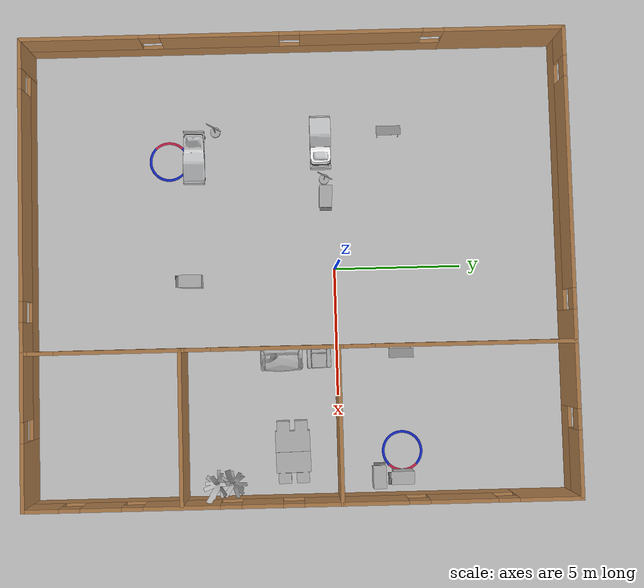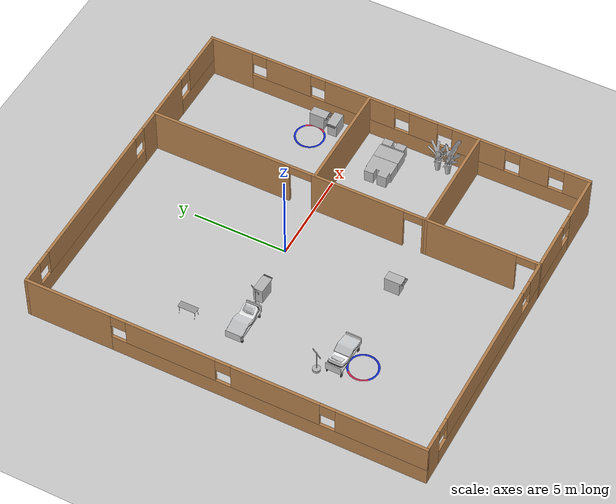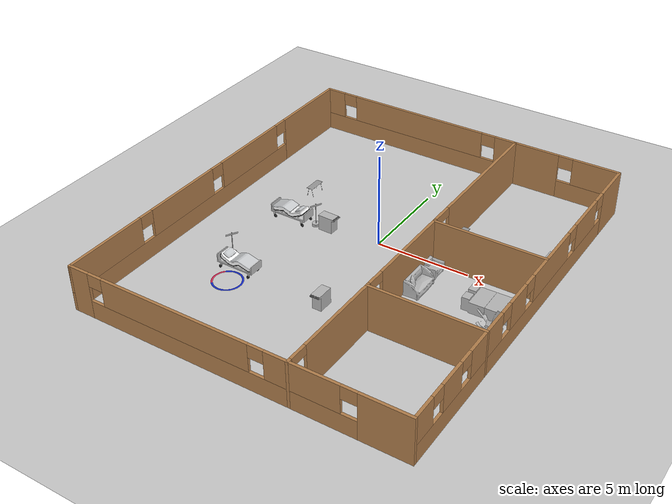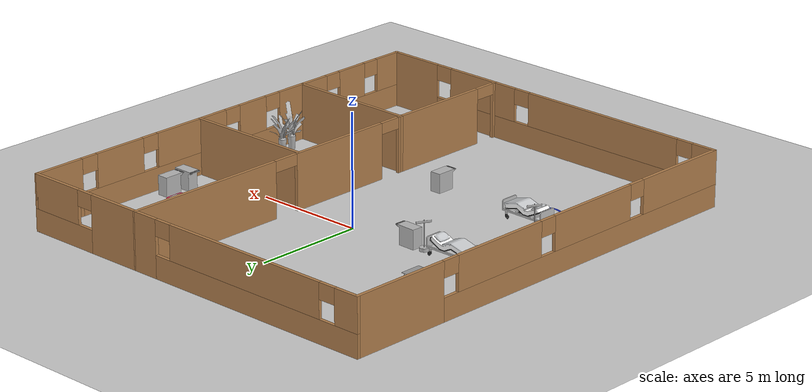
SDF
<sdf version="1.6">
 <world name="default">
  <model name="ground_plane">
   <static>1</static>
   <link name="link">
    <collision name="collision">
     <geometry><plane><normal>0 0 1</normal><size>100 100</size></plane></geometry>
     <surface>
      <contact><collide_bitmask>65535</collide_bitmask></contact>
      <friction><ode><mu>100</mu><mu2>50</mu2></ode></friction>
     </surface>
    </collision>
    <visual name="visual">
     <cast_shadows>0</cast_shadows>
     <geometry><plane><normal>0 0 1</normal><size>100 100</size></plane></geometry>
     <material>
      <script><uri>file://media/materials/scripts/gazebo.material</uri><name>Gazebo/Grey</name></script>
     </material>
    </visual>
   </link>
  </model>
  <model name="hospital_room2_empty_0">
   <pose>5.99215 -1.51021 0 0 -0 0</pose>
   <link name="Wall_0">
    <pose>-2.925 0 0 0 -0 1.5708</pose>
    <visual name="Wall_0_Visual_0">
     <pose>-10.3642 0 1.25 0 -0 0</pose>
     <geometry><box><size>0.271667 0.15 2.5</size></box></geometry>
     <material>
      <script><uri>file://media/materials/scripts/gazebo.material</uri><name>Gazebo/Wood</name></script>
      <ambient>1 1 1 1</ambient>
     </material>
     <meta><layer>0</layer></meta>
    </visual>
    <collision name="Wall_0_Collision_0">
     <geometry><box><size>0.271667 0.15 2.5</size></box></geometry>
     <pose>-10.3642 0 1.25 0 -0 0</pose>
    </collision>
    <visual name="Wall_0_Visual_1">
     <pose>-6.76986 0 1.25 0 -0 0</pose>
     <geometry><box><size>4.91694 0.15 2.5</size></box></geometry>
     <material>
      <script><uri>file://media/materials/scripts/gazebo.material</uri><name>Gazebo/Wood</name></script>
      <ambient>1 1 1 1</ambient>
     </material>
     <meta><layer>0</layer></meta>
    </visual>
    <collision name="Wall_0_Collision_1">
     <geometry><box><size>4.91694 0.15 2.5</size></box></geometry>
     <pose>-6.76986 0 1.25 0 -0 0</pose>
    </collision>
    <visual name="Wall_0_Visual_2">
     <pose>-0.820784 0 1.25 0 -0 0</pose>
     <geometry><box><size>4.98121 0.15 2.5</size></box></geometry>
     <material>
      <script><uri>file://media/materials/scripts/gazebo.material</uri><name>Gazebo/Wood</name></script>
      <ambient>1 1 1 1</ambient>
     </material>
     <meta><layer>0</layer></meta>
    </visual>
    <collision name="Wall_0_Collision_2">
     <geometry><box><size>4.98121 0.15 2.5</size></box></geometry>
     <pose>-0.820784 0 1.25 0 -0 0</pose>
    </collision>
    <visual name="Wall_0_Visual_3">
     <pose>6.68491 0 1.25 0 -0 0</pose>
     <geometry><box><size>7.63018 0.15 2.5</size></box></geometry>
     <material>
      <script><uri>file://media/materials/scripts/gazebo.material</uri><name>Gazebo/Wood</name></script>
      <ambient>1 1 1 1</ambient>
     </material>
     <meta><layer>0</layer></meta>
    </visual>
    <collision name="Wall_0_Collision_3">
     <geometry><box><size>7.63018 0.15 2.5</size></box></geometry>
     <pose>6.68491 0 1.25 0 -0 0</pose>
    </collision>
    <visual name="Wall_0_Visual_4">
     <pose>-9.72833 0 2.25 0 -0 0</pose>
     <geometry><box><size>1 0.15 0.5</size></box></geometry>
     <material>
      <script><uri>file://media/materials/scripts/gazebo.material</uri><name>Gazebo/Wood</name></script>
      <ambient>1 1 1 1</ambient>
     </material>
     <meta><layer>0</layer></meta>
    </visual>
    <collision name="Wall_0_Collision_4">
     <geometry><box><size>1 0.15 0.5</size></box></geometry>
     <pose>-9.72833 0 2.25 0 -0 0</pose>
    </collision>
    <visual name="Wall_0_Visual_5">
     <pose>-3.81139 0 2.25 0 -0 0</pose>
     <geometry><box><size>1 0.15 0.5</size></box></geometry>
     <material>
      <script><uri>file://media/materials/scripts/gazebo.material</uri><name>Gazebo/Wood</name></script>
      <ambient>1 1 1 1</ambient>
     </material>
     <meta><layer>0</layer></meta>
    </visual>
    <collision name="Wall_0_Collision_5">
     <geometry><box><size>1 0.15 0.5</size></box></geometry>
     <pose>-3.81139 0 2.25 0 -0 0</pose>
    </collision>
    <visual name="Wall_0_Visual_6">
     <pose>2.26982 0 2.25 0 -0 0</pose>
     <geometry><box><size>1.2 0.15 0.5</size></box></geometry>
     <material>
      <script><uri>file://media/materials/scripts/gazebo.material</uri><name>Gazebo/Wood</name></script>
      <ambient>1 1 1 1</ambient>
     </material>
     <meta><layer>0</layer></meta>
    </visual>
    <collision name="Wall_0_Collision_6">
     <geometry><box><size>1.2 0.15 0.5</size></box></geometry>
     <pose>2.26982 0 2.25 0 -0 0</pose>
    </collision>
   </link>
   <link name="Wall_10">
    <collision name="Wall_10_Collision">
     <geometry><box><size>6 0.15 2.5</size></box></geometry>
     <pose>0 0 1.25 0 -0 0</pose>
    </collision>
    <visual name="Wall_10_Visual">
     <pose>0 0 1.25 0 -0 0</pose>
     <geometry><box><size>6 0.15 2.5</size></box></geometry>
     <material>
      <script><uri>file://media/materials/scripts/gazebo.material</uri><name>Gazebo/Wood</name></script>
      <ambient>1 1 1 1</ambient>
     </material>
     <meta><layer>0</layer></meta>
    </visual>
    <pose>-0 -4.5 0 0 -0 0</pose>
   </link>
   <link name="Wall_2">
    <pose>-0 10.425 0 0 -0 0</pose>
    <visual name="Wall_2_Visual_0">
     <pose>-1.69561 0 1.25 0 -0 0</pose>
     <geometry><box><size>2.60879 0.15 2.5</size></box></geometry>
     <material>
      <script><uri>file://media/materials/scripts/gazebo.material</uri><name>Gazebo/Wood</name></script>
      <ambient>1 1 1 1</ambient>
     </material>
     <meta><layer>0</layer></meta>
    </visual>
    <collision name="Wall_2_Collision_0">
     <geometry><box><size>2.60879 0.15 2.5</size></box></geometry>
     <pose>-1.69561 0 1.25 0 -0 0</pose>
    </collision>
    <visual name="Wall_2_Visual_1">
     <pose>1.30439 0 0.5 0 -0 0</pose>
     <geometry><box><size>3.39121 0.15 1</size></box></geometry>
     <material>
      <script><uri>file://media/materials/scripts/gazebo.material</uri><name>Gazebo/Wood</name></script>
      <ambient>1 1 1 1</ambient>
     </material>
     <meta><layer>0</layer></meta>
    </visual>
    <collision name="Wall_2_Collision_1">
     <geometry><box><size>3.39121 0.15 1</size></box></geometry>
     <pose>1.30439 0 0.5 0 -0 0</pose>
    </collision>
    <visual name="Wall_2_Visual_2">
     <pose>1.7044 0 1.75 0 -0 0</pose>
     <geometry><box><size>2.59121 0.15 1.5</size></box></geometry>
     <material>
      <script><uri>file://media/materials/scripts/gazebo.material</uri><name>Gazebo/Wood</name></script>
      <ambient>1 1 1 1</ambient>
     </material>
     <meta><layer>0</layer></meta>
    </visual>
    <collision name="Wall_2_Collision_2">
     <geometry><box><size>2.59121 0.15 1.5</size></box></geometry>
     <pose>1.7044 0 1.75 0 -0 0</pose>
    </collision>
    <visual name="Wall_2_Visual_3">
     <pose>0.008791 0 2.15 0 -0 0</pose>
     <geometry><box><size>0.8 0.15 0.7</size></box></geometry>
     <material>
      <script><uri>file://media/materials/scripts/gazebo.material</uri><name>Gazebo/Wood</name></script>
      <ambient>1 1 1 1</ambient>
     </material>
     <meta><layer>0</layer></meta>
    </visual>
    <collision name="Wall_2_Collision_3">
     <geometry><box><size>0.8 0.15 0.7</size></box></geometry>
     <pose>0.008791 0 2.15 0 -0 0</pose>
    </collision>
   </link>
   <link name="Wall_4">
    <pose>2.925 0 0 0 -0 -1.5708</pose>
    <visual name="Wall_4_Visual_0">
     <pose>-9.29746 0 1.25 0 -0 0</pose>
     <geometry><box><size>2.40508 0.15 2.5</size></box></geometry>
     <material>
      <script><uri>file://media/materials/scripts/gazebo.material</uri><name>Gazebo/Wood</name></script>
      <ambient>1 1 1 1</ambient>
     </material>
     <meta><layer>0</layer></meta>
    </visual>
    <collision name="Wall_4_Collision_0">
     <geometry><box><size>2.40508 0.15 2.5</size></box></geometry>
     <pose>-9.29746 0 1.25 0 -0 0</pose>
    </collision>
    <visual name="Wall_4_Visual_1">
     <pose>1.20254 0 0.5 0 -0 0</pose>
     <geometry><box><size>18.5949 0.15 1</size></box></geometry>
     <material>
      <script><uri>file://media/materials/scripts/gazebo.material</uri><name>Gazebo/Wood</name></script>
      <ambient>1 1 1 1</ambient>
     </material>
     <meta><layer>0</layer></meta>
    </visual>
    <collision name="Wall_4_Collision_1">
     <geometry><box><size>18.5949 0.15 1</size></box></geometry>
     <pose>1.20254 0 0.5 0 -0 0</pose>
    </collision>
    <visual name="Wall_4_Visual_2">
     <pose>-6.03126 0 1.75 0 -0 0</pose>
     <geometry><box><size>2.52732 0.15 1.5</size></box></geometry>
     <material>
      <script><uri>file://media/materials/scripts/gazebo.material</uri><name>Gazebo/Wood</name></script>
      <ambient>1 1 1 1</ambient>
     </material>
     <meta><layer>0</layer></meta>
    </visual>
    <collision name="Wall_4_Collision_2">
     <geometry><box><size>2.52732 0.15 1.5</size></box></geometry>
     <pose>-6.03126 0 1.75 0 -0 0</pose>
    </collision>
    <visual name="Wall_4_Visual_3">
     <pose>-2.02155 0 1.75 0 -0 0</pose>
     <geometry><box><size>3.8921 0.15 1.5</size></box></geometry>
     <material>
      <script><uri>file://media/materials/scripts/gazebo.material</uri><name>Gazebo/Wood</name></script>
      <ambient>1 1 1 1</ambient>
     </material>
     <meta><layer>0</layer></meta>
    </visual>
    <collision name="Wall_4_Collision_3">
     <geometry><box><size>3.8921 0.15 1.5</size></box></geometry>
     <pose>-2.02155 0 1.75 0 -0 0</pose>
    </collision>
    <visual name="Wall_4_Visual_4">
     <pose>1.49744 0 1.75 0 -0 0</pose>
     <geometry><box><size>1.54589 0.15 1.5</size></box></geometry>
     <material>
      <script><uri>file://media/materials/scripts/gazebo.material</uri><name>Gazebo/Wood</name></script>
      <ambient>1 1 1 1</ambient>
     </material>
     <meta><layer>0</layer></meta>
    </visual>
    <collision name="Wall_4_Collision_4">
     <geometry><box><size>1.54589 0.15 1.5</size></box></geometry>
     <pose>1.49744 0 1.75 0 -0 0</pose>
    </collision>
    <visual name="Wall_4_Visual_5">
     <pose>4.50824 0 1.75 0 -0 0</pose>
     <geometry><box><size>2.87571 0.15 1.5</size></box></geometry>
     <material>
      <script><uri>file://media/materials/scripts/gazebo.material</uri><name>Gazebo/Wood</name></script>
      <ambient>1 1 1 1</ambient>
     </material>
     <meta><layer>0</layer></meta>
    </visual>
    <collision name="Wall_4_Collision_5">
     <geometry><box><size>2.87571 0.15 1.5</size></box></geometry>
     <pose>4.50824 0 1.75 0 -0 0</pose>
    </collision>
    <visual name="Wall_4_Visual_6">
     <pose>7.51696 0 1.75 0 -0 0</pose>
     <geometry><box><size>1.54173 0.15 1.5</size></box></geometry>
     <material>
      <script><uri>file://media/materials/scripts/gazebo.material</uri><name>Gazebo/Wood</name></script>
      <ambient>1 1 1 1</ambient>
     </material>
     <meta><layer>0</layer></meta>
    </visual>
    <collision name="Wall_4_Collision_6">
     <geometry><box><size>1.54173 0.15 1.5</size></box></geometry>
     <pose>7.51696 0 1.75 0 -0 0</pose>
    </collision>
    <visual name="Wall_4_Visual_7">
     <pose>9.79392 0 1.75 0 -0 0</pose>
     <geometry><box><size>1.41217 0.15 1.5</size></box></geometry>
     <material>
      <script><uri>file://media/materials/scripts/gazebo.material</uri><name>Gazebo/Wood</name></script>
      <ambient>1 1 1 1</ambient>
     </material>
     <meta><layer>0</layer></meta>
    </visual>
    <collision name="Wall_4_Collision_7">
     <geometry><box><size>1.41217 0.15 1.5</size></box></geometry>
     <pose>9.79392 0 1.75 0 -0 0</pose>
    </collision>
    <visual name="Wall_4_Visual_8">
     <pose>-7.69492 0 2.15 0 -0 0</pose>
     <geometry><box><size>0.8 0.15 0.7</size></box></geometry>
     <material>
      <script><uri>file://media/materials/scripts/gazebo.material</uri><name>Gazebo/Wood</name></script>
      <ambient>1 1 1 1</ambient>
     </material>
     <meta><layer>0</layer></meta>
    </visual>
    <collision name="Wall_4_Collision_8">
     <geometry><box><size>0.8 0.15 0.7</size></box></geometry>
     <pose>-7.69492 0 2.15 0 -0 0</pose>
    </collision>
    <visual name="Wall_4_Visual_9">
     <pose>-4.36759 0 2.15 0 -0 0</pose>
     <geometry><box><size>0.8 0.15 0.7</size></box></geometry>
     <material>
      <script><uri>file://media/materials/scripts/gazebo.material</uri><name>Gazebo/Wood</name></script>
      <ambient>1 1 1 1</ambient>
     </material>
     <meta><layer>0</layer></meta>
    </visual>
    <collision name="Wall_4_Collision_9">
     <geometry><box><size>0.8 0.15 0.7</size></box></geometry>
     <pose>-4.36759 0 2.15 0 -0 0</pose>
    </collision>
    <visual name="Wall_4_Visual_10">
     <pose>0.324501 0 2.15 0 -0 0</pose>
     <geometry><box><size>0.8 0.15 0.7</size></box></geometry>
     <material>
      <script><uri>file://media/materials/scripts/gazebo.material</uri><name>Gazebo/Wood</name></script>
      <ambient>1 1 1 1</ambient>
     </material>
     <meta><layer>0</layer></meta>
    </visual>
    <collision name="Wall_4_Collision_10">
     <geometry><box><size>0.8 0.15 0.7</size></box></geometry>
     <pose>0.324501 0 2.15 0 -0 0</pose>
    </collision>
    <visual name="Wall_4_Visual_11">
     <pose>2.67039 0 2.15 0 -0 0</pose>
     <geometry><box><size>0.8 0.15 0.7</size></box></geometry>
     <material>
      <script><uri>file://media/materials/scripts/gazebo.material</uri><name>Gazebo/Wood</name></script>
      <ambient>1 1 1 1</ambient>
     </material>
     <meta><layer>0</layer></meta>
    </visual>
    <collision name="Wall_4_Collision_11">
     <geometry><box><size>0.8 0.15 0.7</size></box></geometry>
     <pose>2.67039 0 2.15 0 -0 0</pose>
    </collision>
    <visual name="Wall_4_Visual_12">
     <pose>6.3461 0 2.15 0 -0 0</pose>
     <geometry><box><size>0.8 0.15 0.7</size></box></geometry>
     <material>
      <script><uri>file://media/materials/scripts/gazebo.material</uri><name>Gazebo/Wood</name></script>
      <ambient>1 1 1 1</ambient>
     </material>
     <meta><layer>0</layer></meta>
    </visual>
    <collision name="Wall_4_Collision_12">
     <geometry><box><size>0.8 0.15 0.7</size></box></geometry>
     <pose>6.3461 0 2.15 0 -0 0</pose>
    </collision>
    <visual name="Wall_4_Visual_13">
     <pose>8.68783 0 2.15 0 -0 0</pose>
     <geometry><box><size>0.8 0.15 0.7</size></box></geometry>
     <material>
      <script><uri>file://media/materials/scripts/gazebo.material</uri><name>Gazebo/Wood</name></script>
      <ambient>1 1 1 1</ambient>
     </material>
     <meta><layer>0</layer></meta>
    </visual>
    <collision name="Wall_4_Collision_13">
     <geometry><box><size>0.8 0.15 0.7</size></box></geometry>
     <pose>8.68783 0 2.15 0 -0 0</pose>
    </collision>
   </link>
   <link name="Wall_6">
    <pose>-0 -10.425 0 0 -0 3.14159</pose>
    <visual name="Wall_6_Visual_0">
     <pose>-1.7044 0 1.25 0 -0 0</pose>
     <geometry><box><size>2.59121 0.15 2.5</size></box></geometry>
     <material>
      <script><uri>file://media/materials/scripts/gazebo.material</uri><name>Gazebo/Wood</name></script>
      <ambient>1 1 1 1</ambient>
     </material>
     <meta><layer>0</layer></meta>
    </visual>
    <collision name="Wall_6_Collision_0">
     <geometry><box><size>2.59121 0.15 2.5</size></box></geometry>
     <pose>-1.7044 0 1.25 0 -0 0</pose>
    </collision>
    <visual name="Wall_6_Visual_1">
     <pose>1.2956 0 0.5 0 -0 0</pose>
     <geometry><box><size>3.40879 0.15 1</size></box></geometry>
     <material>
      <script><uri>file://media/materials/scripts/gazebo.material</uri><name>Gazebo/Wood</name></script>
      <ambient>1 1 1 1</ambient>
     </material>
     <meta><layer>0</layer></meta>
    </visual>
    <collision name="Wall_6_Collision_1">
     <geometry><box><size>3.40879 0.15 1</size></box></geometry>
     <pose>1.2956 0 0.5 0 -0 0</pose>
    </collision>
    <visual name="Wall_6_Visual_2">
     <pose>1.69561 0 1.75 0 -0 0</pose>
     <geometry><box><size>2.60879 0.15 1.5</size></box></geometry>
     <material>
      <script><uri>file://media/materials/scripts/gazebo.material</uri><name>Gazebo/Wood</name></script>
      <ambient>1 1 1 1</ambient>
     </material>
     <meta><layer>0</layer></meta>
    </visual>
    <collision name="Wall_6_Collision_2">
     <geometry><box><size>2.60879 0.15 1.5</size></box></geometry>
     <pose>1.69561 0 1.75 0 -0 0</pose>
    </collision>
    <visual name="Wall_6_Visual_3">
     <pose>-0.008791 0 2.15 0 -0 0</pose>
     <geometry><box><size>0.8 0.15 0.7</size></box></geometry>
     <material>
      <script><uri>file://media/materials/scripts/gazebo.material</uri><name>Gazebo/Wood</name></script>
      <ambient>1 1 1 1</ambient>
     </material>
     <meta><layer>0</layer></meta>
    </visual>
    <collision name="Wall_6_Collision_3">
     <geometry><box><size>0.8 0.15 0.7</size></box></geometry>
     <pose>-0.008791 0 2.15 0 -0 0</pose>
    </collision>
   </link>
   <link name="Wall_8">
    <collision name="Wall_8_Collision">
     <geometry><box><size>6 0.15 2.5</size></box></geometry>
     <pose>0 0 1.25 0 -0 0</pose>
    </collision>
    <visual name="Wall_8_Visual">
     <pose>0 0 1.25 0 -0 0</pose>
     <geometry><box><size>6 0.15 2.5</size></box></geometry>
     <material>
      <script><uri>file://media/materials/scripts/gazebo.material</uri><name>Gazebo/Wood</name></script>
      <ambient>1 1 1 1</ambient>
     </material>
     <meta><layer>0</layer></meta>
    </visual>
    <pose>-0 1.5 0 0 -0 0</pose>
   </link>
   <static>1</static>
  </model>
  <model name="hospital_corridor_2">
   <pose>-2.97557 -1.50857 0 0 -0 0</pose>
   <link name="Wall_12">
    <pose>1e-06 10.425 0 0 -0 3.14159</pose>
    <visual name="Wall_12_Visual_0">
     <pose>-5.44242 0 1.25 0 -0 0</pose>
     <geometry><box><size>1.19015 0.15 2.5</size></box></geometry>
     <material>
      <script><uri>file://media/materials/scripts/gazebo.material</uri><name>Gazebo/Wood</name></script>
      <ambient>1 1 1 1</ambient>
     </material>
     <meta><layer>0</layer></meta>
    </visual>
    <collision name="Wall_12_Collision_0">
     <geometry><box><size>1.19015 0.15 2.5</size></box></geometry>
     <pose>-5.44242 0 1.25 0 -0 0</pose>
    </collision>
    <visual name="Wall_12_Visual_1">
     <pose>0.595076 0 0.5 0 -0 0</pose>
     <geometry><box><size>10.8848 0.15 1</size></box></geometry>
     <material>
      <script><uri>file://media/materials/scripts/gazebo.material</uri><name>Gazebo/Wood</name></script>
      <ambient>1 1 1 1</ambient>
     </material>
     <meta><layer>0</layer></meta>
    </visual>
    <collision name="Wall_12_Collision_1">
     <geometry><box><size>10.8848 0.15 1</size></box></geometry>
     <pose>0.595076 0 0.5 0 -0 0</pose>
    </collision>
    <visual name="Wall_12_Visual_2">
     <pose>0.005295 0 1.75 0 -0 0</pose>
     <geometry><box><size>8.10528 0.15 1.5</size></box></geometry>
     <material>
      <script><uri>file://media/materials/scripts/gazebo.material</uri><name>Gazebo/Wood</name></script>
      <ambient>1 1 1 1</ambient>
     </material>
     <meta><layer>0</layer></meta>
    </visual>
    <collision name="Wall_12_Collision_2">
     <geometry><box><size>8.10528 0.15 1.5</size></box></geometry>
     <pose>0.005295 0 1.75 0 -0 0</pose>
    </collision>
    <visual name="Wall_12_Visual_3">
     <pose>5.44772 0 1.75 0 -0 0</pose>
     <geometry><box><size>1.17956 0.15 1.5</size></box></geometry>
     <material>
      <script><uri>file://media/materials/scripts/gazebo.material</uri><name>Gazebo/Wood</name></script>
      <ambient>1 1 1 1</ambient>
     </material>
     <meta><layer>0</layer></meta>
    </visual>
    <collision name="Wall_12_Collision_3">
     <geometry><box><size>1.17956 0.15 1.5</size></box></geometry>
     <pose>5.44772 0 1.75 0 -0 0</pose>
    </collision>
    <visual name="Wall_12_Visual_4">
     <pose>-4.44735 0 2.15 0 -0 0</pose>
     <geometry><box><size>0.8 0.15 0.7</size></box></geometry>
     <material>
      <script><uri>file://media/materials/scripts/gazebo.material</uri><name>Gazebo/Wood</name></script>
      <ambient>1 1 1 1</ambient>
     </material>
     <meta><layer>0</layer></meta>
    </visual>
    <collision name="Wall_12_Collision_4">
     <geometry><box><size>0.8 0.15 0.7</size></box></geometry>
     <pose>-4.44735 0 2.15 0 -0 0</pose>
    </collision>
    <visual name="Wall_12_Visual_5">
     <pose>4.45794 0 2.15 0 -0 0</pose>
     <geometry><box><size>0.8 0.15 0.7</size></box></geometry>
     <material>
      <script><uri>file://media/materials/scripts/gazebo.material</uri><name>Gazebo/Wood</name></script>
      <ambient>1 1 1 1</ambient>
     </material>
     <meta><layer>0</layer></meta>
    </visual>
    <collision name="Wall_12_Collision_5">
     <geometry><box><size>0.8 0.15 0.7</size></box></geometry>
     <pose>4.45794 0 2.15 0 -0 0</pose>
    </collision>
   </link>
   <link name="Wall_13">
    <pose>-5.9625 0 0 0 -0 -1.5708</pose>
    <visual name="Wall_13_Visual_0">
     <pose>-8.17263 0 1.25 0 -0 0</pose>
     <geometry><box><size>4.65474 0.15 2.5</size></box></geometry>
     <material>
      <script><uri>file://media/materials/scripts/gazebo.material</uri><name>Gazebo/Wood</name></script>
      <ambient>1 1 1 1</ambient>
     </material>
     <meta><layer>0</layer></meta>
    </visual>
    <collision name="Wall_13_Collision_0">
     <geometry><box><size>4.65474 0.15 2.5</size></box></geometry>
     <pose>-8.17263 0 1.25 0 -0 0</pose>
    </collision>
    <visual name="Wall_13_Visual_1">
     <pose>2.32737 0 0.5 0 -0 0</pose>
     <geometry><box><size>16.3453 0.15 1</size></box></geometry>
     <material>
      <script><uri>file://media/materials/scripts/gazebo.material</uri><name>Gazebo/Wood</name></script>
      <ambient>1 1 1 1</ambient>
     </material>
     <meta><layer>0</layer></meta>
    </visual>
    <collision name="Wall_13_Collision_1">
     <geometry><box><size>16.3453 0.15 1</size></box></geometry>
     <pose>2.32737 0 0.5 0 -0 0</pose>
    </collision>
    <visual name="Wall_13_Visual_2">
     <pose>-2.68115 0 1.75 0 -0 0</pose>
     <geometry><box><size>4.72821 0.15 1.5</size></box></geometry>
     <material>
      <script><uri>file://media/materials/scripts/gazebo.material</uri><name>Gazebo/Wood</name></script>
      <ambient>1 1 1 1</ambient>
     </material>
     <meta><layer>0</layer></meta>
    </visual>
    <collision name="Wall_13_Collision_2">
     <geometry><box><size>4.72821 0.15 1.5</size></box></geometry>
     <pose>-2.68115 0 1.75 0 -0 0</pose>
    </collision>
    <visual name="Wall_13_Visual_3">
     <pose>2.76611 0 1.75 0 -0 0</pose>
     <geometry><box><size>4.5663 0.15 1.5</size></box></geometry>
     <material>
      <script><uri>file://media/materials/scripts/gazebo.material</uri><name>Gazebo/Wood</name></script>
      <ambient>1 1 1 1</ambient>
     </material>
     <meta><layer>0</layer></meta>
    </visual>
    <collision name="Wall_13_Collision_3">
     <geometry><box><size>4.5663 0.15 1.5</size></box></geometry>
     <pose>2.76611 0 1.75 0 -0 0</pose>
    </collision>
    <visual name="Wall_13_Visual_4">
     <pose>8.17463 0 1.75 0 -0 0</pose>
     <geometry><box><size>4.65074 0.15 1.5</size></box></geometry>
     <material>
      <script><uri>file://media/materials/scripts/gazebo.material</uri><name>Gazebo/Wood</name></script>
      <ambient>1 1 1 1</ambient>
     </material>
     <meta><layer>0</layer></meta>
    </visual>
    <collision name="Wall_13_Collision_4">
     <geometry><box><size>4.65074 0.15 1.5</size></box></geometry>
     <pose>8.17463 0 1.75 0 -0 0</pose>
    </collision>
    <visual name="Wall_13_Visual_5">
     <pose>-5.44526 0 2.15 0 -0 0</pose>
     <geometry><box><size>0.8 0.15 0.7</size></box></geometry>
     <material>
      <script><uri>file://media/materials/scripts/gazebo.material</uri><name>Gazebo/Wood</name></script>
      <ambient>1 1 1 1</ambient>
     </material>
     <meta><layer>0</layer></meta>
    </visual>
    <collision name="Wall_13_Collision_5">
     <geometry><box><size>0.8 0.15 0.7</size></box></geometry>
     <pose>-5.44526 0 2.15 0 -0 0</pose>
    </collision>
    <visual name="Wall_13_Visual_6">
     <pose>0.082958 0 2.15 0 -0 0</pose>
     <geometry><box><size>0.8 0.15 0.7</size></box></geometry>
     <material>
      <script><uri>file://media/materials/scripts/gazebo.material</uri><name>Gazebo/Wood</name></script>
      <ambient>1 1 1 1</ambient>
     </material>
     <meta><layer>0</layer></meta>
    </visual>
    <collision name="Wall_13_Collision_6">
     <geometry><box><size>0.8 0.15 0.7</size></box></geometry>
     <pose>0.082958 0 2.15 0 -0 0</pose>
    </collision>
    <visual name="Wall_13_Visual_7">
     <pose>5.44926 0 2.15 0 -0 0</pose>
     <geometry><box><size>0.8 0.15 0.7</size></box></geometry>
     <material>
      <script><uri>file://media/materials/scripts/gazebo.material</uri><name>Gazebo/Wood</name></script>
      <ambient>1 1 1 1</ambient>
     </material>
     <meta><layer>0</layer></meta>
    </visual>
    <collision name="Wall_13_Collision_7">
     <geometry><box><size>0.8 0.15 0.7</size></box></geometry>
     <pose>5.44926 0 2.15 0 -0 0</pose>
    </collision>
   </link>
   <link name="Wall_14">
    <pose>1e-06 -10.425 0 0 -0 0</pose>
    <visual name="Wall_14_Visual_0">
     <pose>-5.44772 0 1.25 0 -0 0</pose>
     <geometry><box><size>1.17956 0.15 2.5</size></box></geometry>
     <material>
      <script><uri>file://media/materials/scripts/gazebo.material</uri><name>Gazebo/Wood</name></script>
      <ambient>1 1 1 1</ambient>
     </material>
     <meta><layer>0</layer></meta>
    </visual>
    <collision name="Wall_14_Collision_0">
     <geometry><box><size>1.17956 0.15 2.5</size></box></geometry>
     <pose>-5.44772 0 1.25 0 -0 0</pose>
    </collision>
    <visual name="Wall_14_Visual_1">
     <pose>0.589782 0 0.5 0 -0 0</pose>
     <geometry><box><size>10.8954 0.15 1</size></box></geometry>
     <material>
      <script><uri>file://media/materials/scripts/gazebo.material</uri><name>Gazebo/Wood</name></script>
      <ambient>1 1 1 1</ambient>
     </material>
     <meta><layer>0</layer></meta>
    </visual>
    <collision name="Wall_14_Collision_1">
     <geometry><box><size>10.8954 0.15 1</size></box></geometry>
     <pose>0.589782 0 0.5 0 -0 0</pose>
    </collision>
    <visual name="Wall_14_Visual_2">
     <pose>-0.005295 0 1.75 0 -0 0</pose>
     <geometry><box><size>8.10528 0.15 1.5</size></box></geometry>
     <material>
      <script><uri>file://media/materials/scripts/gazebo.material</uri><name>Gazebo/Wood</name></script>
      <ambient>1 1 1 1</ambient>
     </material>
     <meta><layer>0</layer></meta>
    </visual>
    <collision name="Wall_14_Collision_2">
     <geometry><box><size>8.10528 0.15 1.5</size></box></geometry>
     <pose>-0.005295 0 1.75 0 -0 0</pose>
    </collision>
    <visual name="Wall_14_Visual_3">
     <pose>5.44242 0 1.75 0 -0 0</pose>
     <geometry><box><size>1.19015 0.15 1.5</size></box></geometry>
     <material>
      <script><uri>file://media/materials/scripts/gazebo.material</uri><name>Gazebo/Wood</name></script>
      <ambient>1 1 1 1</ambient>
     </material>
     <meta><layer>0</layer></meta>
    </visual>
    <collision name="Wall_14_Collision_3">
     <geometry><box><size>1.19015 0.15 1.5</size></box></geometry>
     <pose>5.44242 0 1.75 0 -0 0</pose>
    </collision>
    <visual name="Wall_14_Visual_4">
     <pose>-4.45794 0 2.15 0 -0 0</pose>
     <geometry><box><size>0.8 0.15 0.7</size></box></geometry>
     <material>
      <script><uri>file://media/materials/scripts/gazebo.material</uri><name>Gazebo/Wood</name></script>
      <ambient>1 1 1 1</ambient>
     </material>
     <meta><layer>0</layer></meta>
    </visual>
    <collision name="Wall_14_Collision_4">
     <geometry><box><size>0.8 0.15 0.7</size></box></geometry>
     <pose>-4.45794 0 2.15 0 -0 0</pose>
    </collision>
    <visual name="Wall_14_Visual_5">
     <pose>4.44735 0 2.15 0 -0 0</pose>
     <geometry><box><size>0.8 0.15 0.7</size></box></geometry>
     <material>
      <script><uri>file://media/materials/scripts/gazebo.material</uri><name>Gazebo/Wood</name></script>
      <ambient>1 1 1 1</ambient>
     </material>
     <meta><layer>0</layer></meta>
    </visual>
    <collision name="Wall_14_Collision_5">
     <geometry><box><size>0.8 0.15 0.7</size></box></geometry>
     <pose>4.44735 0 2.15 0 -0 0</pose>
    </collision>
   </link>
   <static>1</static>
  </model>
  <model name="ikea_desk">
   <static>1</static>
   <link name="link">
    <inertial>
     <mass>5</mass>
     <inertia><ixx>1</ixx><ixy>0</ixy><ixz>0</ixz><iyy>1</iyy><iyz>0</iyz><izz>1</izz></inertia>
    </inertial>
    <collision name="collision">
     <pose>0 0.03 0.227 0 -0 0</pose>
     <geometry><box><size>0.416 0.98 0.455</size></box></geometry>
    </collision>
    <visual name="visual"><geometry><mesh><uri>model://ikea_desk/ikea_desk.dae</uri></mesh></geometry></visual>
   </link>
   <pose>-5.47681 2.23884 0 0 -0 0</pose>
  </model>
  <model name="service_cart_0">
   <static>0</static>
   <link name="link">
    <inertial>
     <mass>10</mass>
     <inertia><ixx>1</ixx><ixy>0</ixy><ixz>0</ixz><iyy>1</iyy><iyz>0</iyz><izz>1</izz></inertia>
    </inertial>
    <collision name="collision">
     <geometry><mesh><uri>model://service_cart/service_cart_collision.dae</uri></mesh></geometry>
    </collision>
    <visual name="visual">
     <geometry><mesh><uri>model://service_cart/service_cart.dae</uri></mesh></geometry>
    </visual>
   </link>
   <pose>8.24265 2.37635 -0.000842 0 9e-06 0.003418</pose>
  </model>
  <model name="service_cart_1">
   <static>0</static>
   <link name="link">
    <inertial>
     <mass>10</mass>
     <inertia><ixx>1</ixx><ixy>0</ixy><ixz>0</ixz><iyy>1</iyy><iyz>0</iyz><izz>1</izz></inertia>
    </inertial>
    <collision name="collision">
     <geometry><mesh><uri>model://service_cart/service_cart_collision.dae</uri></mesh></geometry>
    </collision>
    <visual name="visual">
     <geometry><mesh><uri>model://service_cart/service_cart.dae</uri></mesh></geometry>
    </visual>
   </link>
   <pose>8.13461 1.48598 -0.000842 0 9e-06 -1.56682</pose>
  </model>
  <model name="ikea_desk_1">
   <static>1</static>
   <link name="link">
    <inertial>
     <mass>5</mass>
     <inertia><ixx>1</ixx><ixy>0</ixy><ixz>0</ixz><iyy>1</iyy><iyz>0</iyz><izz>1</izz></inertia>
    </inertial>
    <collision name="collision">
     <pose>0 0.03 0.227 0 -0 0</pose>
     <geometry><box><size>0.416 0.98 0.455</size></box></geometry>
    </collision>
    <visual name="visual"><geometry><mesh><uri>model://ikea_desk/ikea_desk.dae</uri></mesh></geometry></visual>
   </link>
   <pose>3.39039 2.48058 0 0 -0 0</pose>
  </model>
  <model name="chairs_and_table">
   <static>1</static>
   <link name="link">
    <inertial>
     <mass>30</mass>
     <inertia><ixx>1</ixx><ixy>0</ixy><ixz>0</ixz><iyy>1</iyy><iyz>0</iyz><izz>1</izz></inertia>
    </inertial>
    <collision name="collision">
     <geometry><mesh><uri>model://chairs_and_table/chairs_and_table_collision.dae</uri></mesh></geometry>
    </collision>
    <visual name="visual">
     <geometry><mesh><uri>model://chairs_and_table/chairs_and_table.dae</uri></mesh></geometry>
    </visual>
   </link>
   <pose>7.53304 -1.82199 0 0 -0 1.59075</pose>
  </model>
  <model name="chairs_and_table_0">
   <static>1</static>
   <link name="link">
    <inertial>
     <mass>30</mass>
     <inertia><ixx>1</ixx><ixy>0</ixy><ixz>0</ixz><iyy>1</iyy><iyz>0</iyz><izz>1</izz></inertia>
    </inertial>
    <collision name="collision">
     <geometry><mesh><uri>model://chairs_and_table/chairs_and_table_collision.dae</uri></mesh></geometry>
    </collision>
    <visual name="visual">
     <geometry><mesh><uri>model://chairs_and_table/chairs_and_table.dae</uri></mesh></geometry>
    </visual>
   </link>
   <pose>6.73017 -1.84032 0 0 0 -1.55214</pose>
  </model>
  <model name="plant_0">
   <static>1</static>
   <link name="link">
    <inertial>
     <pose>0 -0.2 0 0 -0 0</pose>
     <mass>10</mass>
     <inertia><ixx>1</ixx><ixy>0</ixy><ixz>0</ixz><iyy>1</iyy><iyz>0</iyz><izz>1</izz></inertia>
    </inertial>
    <collision name="collision">
     <geometry><mesh><uri>model://plant/plant_collision.dae</uri></mesh></geometry>
    </collision>
    <visual name="visual"><geometry><mesh><uri>model://plant/plant.dae</uri></mesh></geometry></visual>
   </link>
   <pose>8.27176 -4.72072 0 0 0 -1.57445</pose>
  </model>
  <model name="single_sofa_0">
   <static>1</static>
   <link name="link">
    <inertial>
     <mass>10</mass>
     <inertia><ixx>1</ixx><ixy>0</ixy><ixz>0</ixz><iyy>1</iyy><iyz>0</iyz><izz>1</izz></inertia>
    </inertial>
    <collision name="collision">
     <pose>0 0.07 0.39 0 -0 0</pose>
     <geometry><box><size>0.93 0.738 0.78</size></box></geometry>
    </collision>
    <visual name="visual">
     <geometry><mesh><uri>model://single_sofa/single_sofa.dae</uri></mesh></geometry>
    </visual>
   </link>
   <pose>3.61111 -0.728278 0 0 -0 1.5886</pose>
  </model>
  <model name="round_sofa_3">
   <static>1</static>
   <link name="link">
    <inertial>
     <mass>5</mass>
     <inertia><ixx>1</ixx><ixy>0</ixy><ixz>0</ixz><iyy>1</iyy><iyz>0</iyz><izz>1</izz></inertia>
    </inertial>
    <collision name="collision">
     <pose>-0.09 -0.05 0.425 0 -0 0</pose>
     <geometry><box><size>1.65 0.85 0.85</size></box></geometry>
    </collision>
    <visual name="visual"><geometry><mesh><uri>model://round_sofa/round_sofa.dae</uri></mesh></geometry></visual>
   </link>
   <pose>3.51697 -2.10615 0 0 -0 1.57788</pose>
  </model>
  <model name="iv_pole_5">
   <static>0</static>
   <link name="link">
    <inertial>
     <mass>5</mass>
     <inertia><ixx>1</ixx><ixy>0</ixy><ixz>0</ixz><iyy>1</iyy><iyz>0</iyz><izz>1</izz></inertia>
    </inertial>
    <collision name="collision">
     <geometry><mesh><uri>model://iv_pole/iv_pole_collision.dae</uri></mesh></geometry>
    </collision>
    <visual name="visual"><geometry><mesh><uri>model://iv_pole/iv_pole.dae</uri></mesh></geometry></visual>
   </link>
   <pose>-5.63381 -4.59638 0.008029 1e-06 -0 -6e-05</pose>
  </model>
  <model name="iv_pole_6">
   <static>0</static>
   <link name="link">
    <inertial>
     <mass>5</mass>
     <inertia><ixx>1</ixx><ixy>0</ixy><ixz>0</ixz><iyy>1</iyy><iyz>0</iyz><izz>1</izz></inertia>
    </inertial>
    <collision name="collision">
     <geometry><mesh><uri>model://iv_pole/iv_pole_collision.dae</uri></mesh></geometry>
    </collision>
    <visual name="visual"><geometry><mesh><uri>model://iv_pole/iv_pole.dae</uri></mesh></geometry></visual>
   </link>
   <pose>-3.62636 -0.267731 0.008029 1e-06 -0 0.026395</pose>
  </model>
  <model name="service_cart_7">
   <static>0</static>
   <link name="link">
    <inertial>
     <mass>10</mass>
     <inertia><ixx>1</ixx><ixy>0</ixy><ixz>0</ixz><iyy>1</iyy><iyz>0</iyz><izz>1</izz></inertia>
    </inertial>
    <collision name="collision">
     <geometry><mesh><uri>model://service_cart/service_cart_collision.dae</uri></mesh></geometry>
    </collision>
    <visual name="visual">
     <geometry><mesh><uri>model://service_cart/service_cart.dae</uri></mesh></geometry>
    </visual>
   </link>
   <pose>-2.82378 -0.281133 -0.000842 -0 9e-06 1.5327</pose>
  </model>
  <model name="service_cart_9">
   <static>0</static>
   <link name="link">
    <inertial>
     <mass>10</mass>
     <inertia><ixx>1</ixx><ixy>0</ixy><ixz>0</ixz><iyy>1</iyy><iyz>0</iyz><izz>1</izz></inertia>
    </inertial>
    <collision name="collision">
     <geometry><mesh><uri>model://service_cart/service_cart_collision.dae</uri></mesh></geometry>
    </collision>
    <visual name="visual">
     <geometry><mesh><uri>model://service_cart/service_cart.dae</uri></mesh></geometry>
    </visual>
   </link>
   <pose>0.402938 -5.7503 -0.000842 0 9e-06 0</pose>
  </model>
  <model name="hospital_bed">
   <static>0</static>
   <link name="link">
    <inertial>
     <mass>20</mass>
     <inertia><ixx>1</ixx><ixy>0</ixy><ixz>0</ixz><iyy>1</iyy><iyz>0</iyz><izz>1</izz></inertia>
    </inertial>
    <collision name="collision">
     <geometry><mesh><uri>model://hospital_bed/hospital_bed_collision.dae</uri></mesh></geometry>
    </collision>
    <visual name="visual">
     <geometry><mesh><uri>model://hospital_bed/hospital_bed.dae</uri></mesh></geometry>
    </visual>
   </link>
   <pose>-5.03028 -0.464098 -0.001 0 -0 0.001373</pose>
  </model>
  <model name="hospital_bed_1">
   <static>0</static>
   <link name="link">
    <inertial>
     <mass>20</mass>
     <inertia><ixx>1</ixx><ixy>0</ixy><ixz>0</ixz><iyy>1</iyy><iyz>0</iyz><izz>1</izz></inertia>
    </inertial>
    <collision name="collision">
     <geometry><mesh><uri>model://hospital_bed/hospital_bed_collision.dae</uri></mesh></geometry>
    </collision>
    <visual name="visual">
     <geometry><mesh><uri>model://hospital_bed/hospital_bed.dae</uri></mesh></geometry>
    </visual>
   </link>
   <pose>-4.55035 -5.50107 -0.001 0 -0 3.13212</pose>
  </model>
  <model name="circle_marker">
   <static>1</static>
   <link name="link">
    <inertial>
     <mass>10</mass>
     <inertia><ixx>1</ixx><ixy>0</ixy><ixz>0</ixz><iyy>1</iyy><iyz>0</iyz><izz>1</izz></inertia>
    </inertial>
    <visual name="visual">
     <geometry><mesh><uri>model://circle_marker/circle_marker.dae</uri></mesh></geometry>
    </visual>
   </link>
   <pose>-4.50117 -6.53182 0 0 -0 0</pose>
  </model>
  <model name="circle_marker_0">
   <static>1</static>
   <link name="link">
    <inertial>
     <mass>10</mass>
     <inertia><ixx>1</ixx><ixy>0</ixy><ixz>0</ixz><iyy>1</iyy><iyz>0</iyz><izz>1</izz></inertia>
    </inertial>
    <visual name="visual">
     <geometry><mesh><uri>model://circle_marker/circle_marker.dae</uri></mesh></geometry>
    </visual>
   </link>
   <pose>7.24921 2.47859 0 0 0 -3.12264</pose>
  </model>
 </world>
</sdf>
